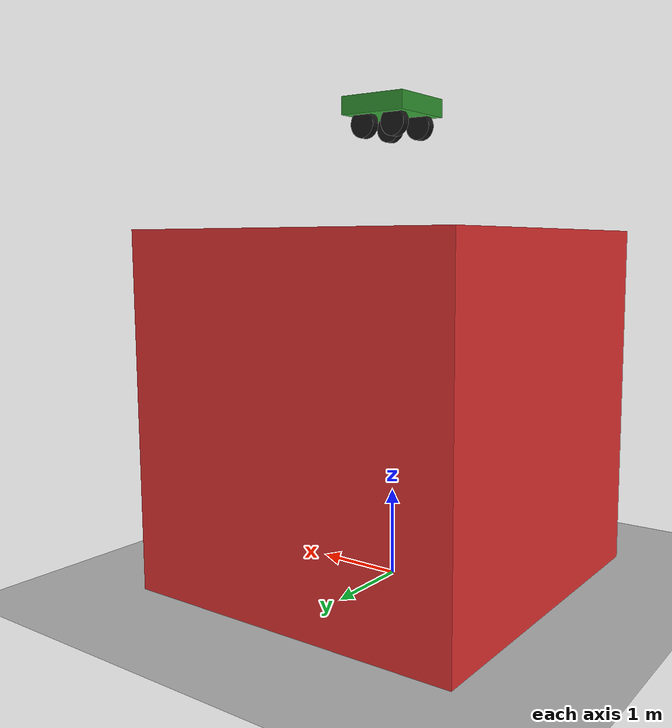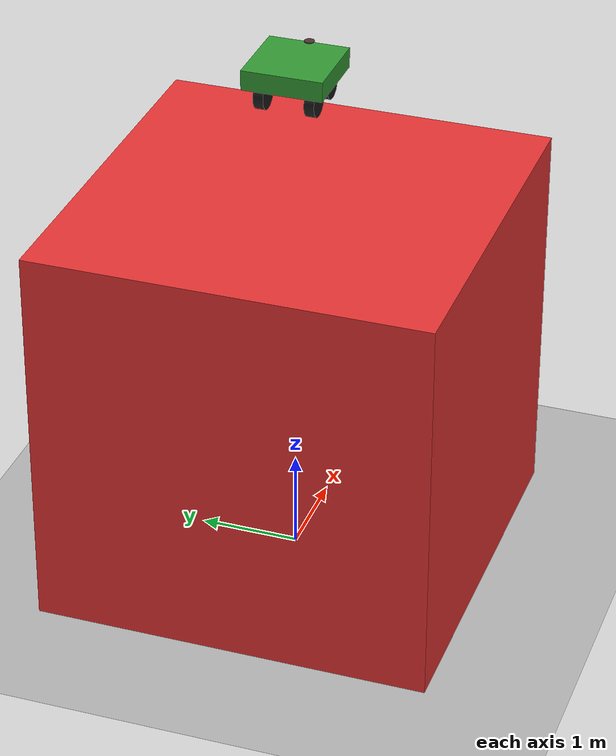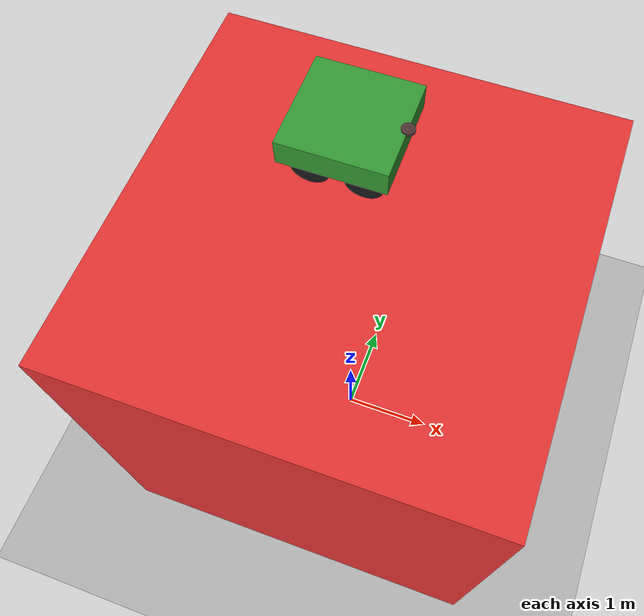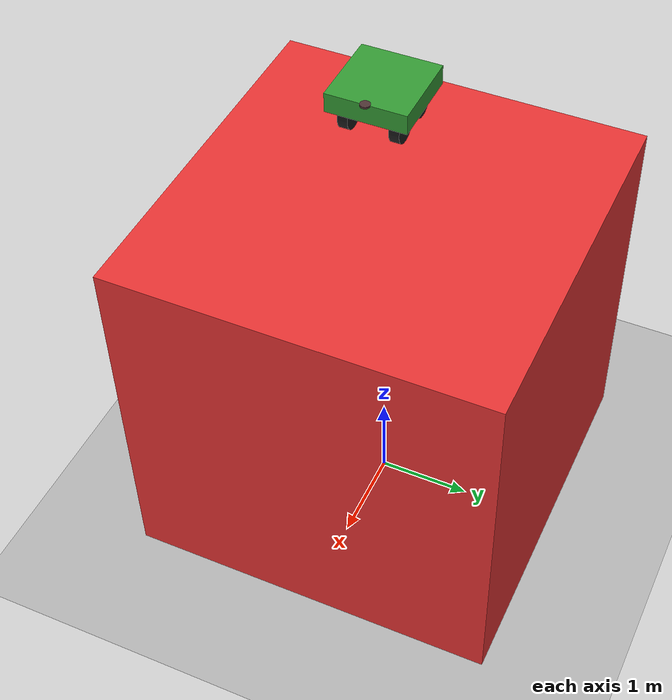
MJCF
<mujoco model="four_wheel_base">
	<option timestep="0.001" gravity="0 0 0" cone="pyramidal" integrator="RK4"/>

	<worldbody>
		<!-- ground plane -->
		<geom name="floor" type="plane" size="10 10 0.1" rgba="0.7 0.7 0.7 1"
			friction="1.0 0.01 0.001"/>

		<!-- table -->
		<!-- Requirement ID SR-004 SR-005 -->
		<body name="table" pos="0 0 2">
		<geom name="table_top" type="box" size="2 2 2" rgba="0.9 0.2 0.2 1"
                  friction="0.8 0.01 0.001"
                  solref="0.02 1" solimp="0.9 0.95 0.002"
                  contype="1" conaffinity="3"/>

		</body>

		<!-- 4-wheel robot -->
		<body name="car" pos="0 0 5.15">
			<freejoint name="chassis_free"/>

			<!-- robot chassis -->
			<geom name="chassis" type="box" size="0.4 0.4 0.1" pos="0 0 0.20"
					mass="20" rgba="0.2 0.6 0.2 1" contype="1" conaffinity="1"/>

			<site name="chassis_site" pos="0 0 0" size="0.01"/>

			<!-- wheel params -->
			<!-- wheel radius=0.15, wheel width half=0.05 wheel mass=2-->
			<!-- Track length 0.5, wheelbase 0.4 -->

			<body name="directionIndicator" pos="0.4 0 0.3">
				<geom name="direction" type="cylinder" size="0.05 0.01" euler="0 0 90" rgba="0.3 0.2 0.2 1"/>
			</body>

			<body name="wheel_fl" pos=" 0.20  0.25 0">
				<joint name="j_fl" type="hinge" axis="0 1 0" limited="false" damping="0.2" armature="0.002"/>
				<geom name="g_fl" type="cylinder" size="0.15 0.05" euler="90 0 0"
					mass="2" friction="1.0 0.01 0.001" condim="3" solref="0.02 1" solimp="0.9 0.95 0.002"
						rgba="0.1 0.1 0.1 1" contype="2" conaffinity="3"/>
			</body>

			<body name="wheel_fr" pos=" 0.20 -0.25 0">
				<joint name="j_fr" type="hinge" axis="0 1 0" limited="false" damping="0.2" armature="0.002"/>
				<geom name="g_fr" type="cylinder" size="0.15 0.05" euler="90 0 0"
					mass="2" friction="1.0 0.01 0.001" condim="3" solref="0.02 1" solimp="0.9 0.95 0.002"
						rgba="0.1 0.1 0.1 1" contype="2" conaffinity="3"/>
			</body>

			<body name="wheel_rl" pos="-0.20  0.25 0">
				<joint name="j_rl" type="hinge" axis="0 1 0" limited="false" damping="0.2" armature="0.002"/>
				<geom name="g_rl" type="cylinder" size="0.15 0.05" euler="90 0 0"
					mass="2" friction="1.0 0.01 0.001" condim="3" solref="0.02 1" solimp="0.9 0.95 0.002"
						rgba="0.1 0.1 0.1 1" contype="2" conaffinity="3"/>
			</body>

			<body name="wheel_rr" pos="-0.20 -0.25 0">
				<joint name="j_rr" type="hinge" axis="0 1 0" limited="false" damping="0.2" armature="0.002"/>
				<geom name="g_rr" type="cylinder" size="0.15 0.05" euler="90 0 0"
					mass="2" friction="1.0 0.01 0.001" condim="3" solref="0.02 1" solimp="0.9 0.95 0.002"
						rgba="0.1 0.1 0.1 1" contype="2" conaffinity="3"/>
			</body>
		</body>
	</worldbody>

	<actuator>
		<!-- Requirement ID SR-002 -->
		<motor  name="m_fl" joint="j_fl" gear="10" ctrlrange="-1 1"/>
		<motor  name="m_fr" joint="j_fr" gear="10" ctrlrange="-1 1"/>
		<motor  name="m_rl" joint="j_rl" gear="10" ctrlrange="-1 1"/>
		<motor  name="m_rr" joint="j_rr" gear="10" ctrlrange="-1 1"/>
	</actuator>

	<sensor>
		<!-- Chassis pose (MAP frame) -->
		<framepos  name="chassis_pos"  objtype="site" objname="chassis_site"/>
		<framequat name="chassis_quat" objtype="site" objname="chassis_site"/>

		<!-- wheel angular speeds -->
		<jointvel name="w_fl" joint="j_fl"/>
		<jointvel name="w_fr" joint="j_fr"/>
		<jointvel name="w_rl" joint="j_rl"/>
		<jointvel name="w_rr" joint="j_rr"/>
	</sensor>

</mujoco>
